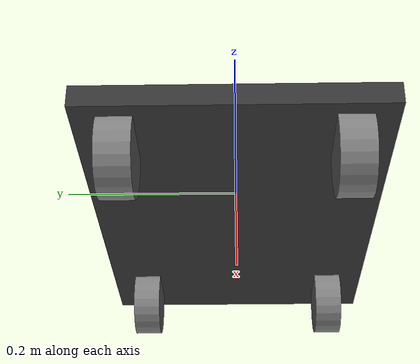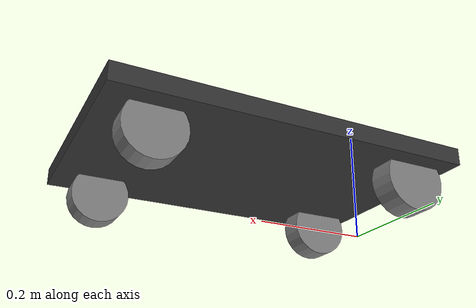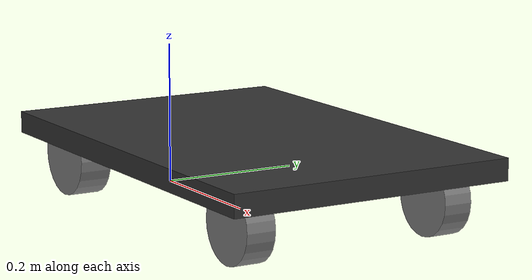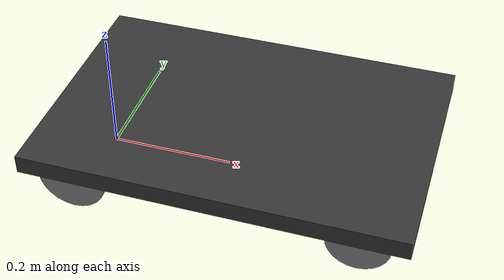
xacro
<?xml version="1.0" encoding="utf-8" ?>
<robot xmlns:xacro="http://www.ros.org/wiki/xacro" name="av">

    <xacro:include filename="macros.xacro"/>

    <material name="dark_grey">
        <color rgba="0.2 0.2 0.2 1.0"/>
    </material>
    <material name="grey">
        <color rgba="0.5 0.5 0.5 1.0"/>
    </material>

    <xacro:property name="y_wheel_offset" value="${0.29 / 2.0}"/>

    <xacro:macro name="wheel" params="prefix:='' reflect:=1.0 radius width mass x_offset:='0'">
        <link name="${prefix}wheel_link">
            <visual>
                <origin xyz="0 0 0" rpy="0 0 0"/>
                <geometry>
                    <cylinder radius="${radius}" length="${width}"/>
                </geometry>
                <material name="grey"/>
            </visual>
            <collision>
                <origin xyz="0 0 0" rpy="0 0 0"/>
                <geometry>
                    <!-- prevent wheel drift in simulation with a sphere -->
                    <sphere radius="${drive_wheel_radius}"/>
                </geometry>
            </collision>
            <xacro:cylinder_inertia mass="${mass}" radius="${radius}" width="${width}"/>
        </link>
        <joint name="${prefix}wheel_joint" type="continuous">
            <axis xyz="0 0 1"/>
            <origin xyz="${x_offset} ${reflect * y_wheel_offset} ${radius}" rpy="${-pi / 2.0} 0 0"/>
            <parent link="base_link"/>
            <child link="${prefix}wheel_link"/>
            <limit velocity="100.0" effort="100.0"/>
        </joint>
    </xacro:macro>

    <!-- drive wheels -->
    <xacro:property name="drive_wheel_mass" value="0.322"/>
    <xacro:property name="drive_wheel_radius" value="${0.11 / 2.0}"/>
    <xacro:property name="drive_wheel_width" value="0.045"/>
    <xacro:wheel prefix="left_" reflect="1.0" radius="${drive_wheel_radius}" width="${drive_wheel_width}" mass="${drive_wheel_mass}"/>
    <xacro:wheel prefix="right_" reflect="-1.0" radius="${drive_wheel_radius}" width="${drive_wheel_width}" mass="${drive_wheel_mass}"/>

    <!-- caster wheels -->
    <xacro:property name="caster_mass" value="0.260"/>
    <xacro:property name="caster_wheel_radius" value="${0.10 / 2.0}"/>
    <xacro:property name="caster_wheel_width" value="0.040"/>
    <xacro:property name="caster_x_offset" value="0.45"/>
    <xacro:wheel prefix="left_caster_" reflect="1.0" radius="${caster_wheel_radius}" width="${caster_wheel_width}" mass="${caster_mass}" x_offset="${caster_x_offset}"/>
    <xacro:wheel prefix="right_caster_" reflect="-1.0" radius="${caster_wheel_radius}" width="${caster_wheel_width}" mass="${caster_mass}" x_offset="${caster_x_offset}"/>

    <link name="chassis">
        <xacro:property name="body_length" value="0.6"/>
        <xacro:property name="body_width" value="0.4"/>
        <xacro:property name="body_height" value="0.03"/>

        <visual>
            <origin xyz="0 0 0" rpy="0 0 0"/>
            <geometry>
                <box size="${body_length} ${body_width} ${body_height}"/>
            </geometry>
            <material name="dark_grey"/>
        </visual>
        <collision>
            <origin xyz="0 0 0" rpy="0 0 0"/>
            <geometry>
                <box size="${body_length} ${body_width} ${body_height}"/>
            </geometry>
        </collision>

        <xacro:property name="frame_mass" value="7.0"/>
        <xacro:property name="battery_mass" value="11.0"/>
        <xacro:property name="body_mass" value="${frame_mass + battery_mass}"/>

        <inertial>
            <mass value="${body_mass}"/>
            <inertia
                ixx="${body_mass * (body_height ** 2 + body_width ** 2) / 12.0}"
                iyy="${body_mass * (body_height ** 2 + body_length ** 2) / 12.0}"
                izz="${body_mass * (body_length ** 2 + body_width ** 2) / 12.0}"
                ixy="0.0" ixz="0.0" iyz="0.0"
            />
        </inertial>
    </link>

    <joint name="chassis_joint" type="fixed">
        <origin xyz="0.23 0 0.095" rpy="0 0 0"/>
        <parent link="base_link"/>
        <child link="chassis"/>
    </joint>

    <link name="base_link"/>

    <joint name="base_footprint_joint" type="fixed">
        <origin xyz="0 0 0" rpy="0 0 0"/>
        <parent link="base_link"/>
        <child link="base_footprint"/>
    </joint>
    <link name="base_footprint"/>
</robot>

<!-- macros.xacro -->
<robot xmlns:xacro="http://www.ros.org/wiki/xacro">
    <xacro:macro name="cylinder_inertia" params="mass radius width">
    <inertial>
        <mass value="${mass}"/>
        <inertia
        ixx="${(mass * ((3 * radius ** 2) + width ** 2)) / 12.0}"
        iyy="${(mass * ((3 * radius ** 2) + width ** 2)) / 12.0}"
        izz="${(mass * radius ** 2) / 2.0}"
        ixy="0.0" ixz="0.0" iyz="0.0"/>
    </inertial>
    </xacro:macro>
</robot>
